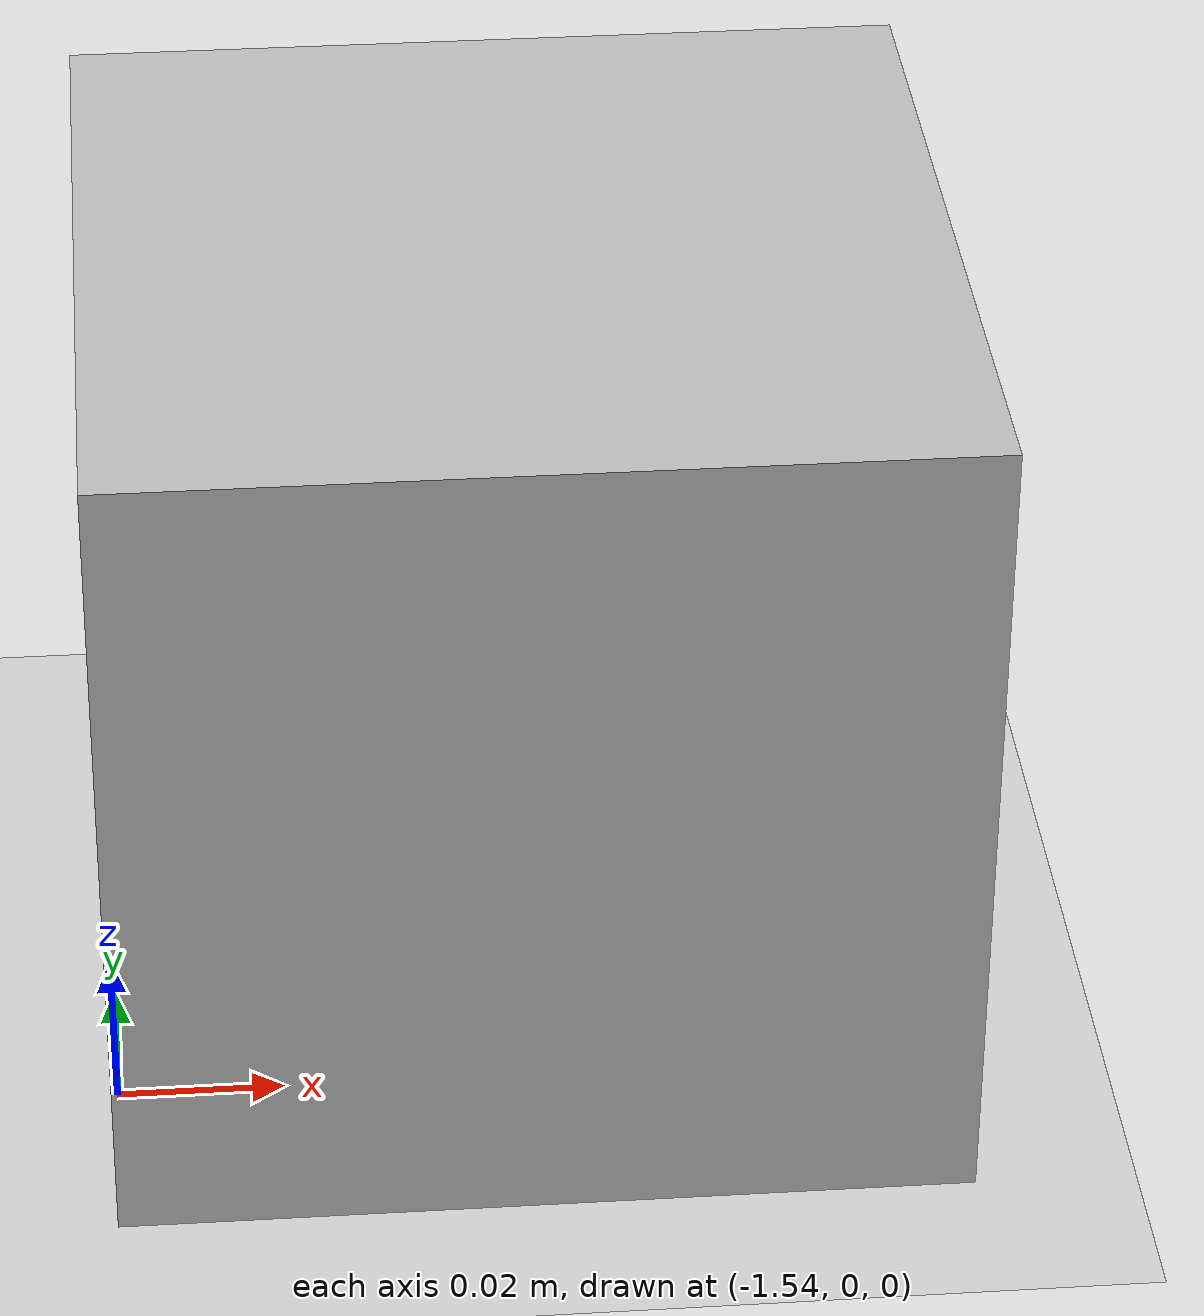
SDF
<?xml version="1.0" ?>
<sdf version='1.6'>
  <world name='default'>
    <light name='sun' type='directional'>
      <cast_shadows>1</cast_shadows>
      <pose frame=''>0 0 10 0 -0 0</pose>
      <diffuse>0.8 0.8 0.8 1</diffuse>
      <specular>0.2 0.2 0.2 1</specular>
      <attenuation>
        <range>1000</range>
        <constant>0.9</constant>
        <linear>0.01</linear>
        <quadratic>0.001</quadratic>
      </attenuation>
      <direction>-0.5 0.1 -0.9</direction>
    </light>
    <model name='ground_plane'>
      <static>1</static>
      <link name='link'>
        <collision name='collision'>
          <geometry>
            <plane>
              <normal>0 0 1</normal>
              <size>100 100</size>
            </plane>
          </geometry>
          <surface>
            <friction>
              <ode>
                <mu>100</mu>
                <mu2>50</mu2>
              </ode>
              <torsional>
                <ode/>
              </torsional>
            </friction>
            <contact>
              <ode/>
            </contact>
            <bounce/>
          </surface>
          <max_contacts>10</max_contacts>
        </collision>
        <visual name='visual'>
          <cast_shadows>0</cast_shadows>
          <geometry>
            <plane>
              <normal>0 0 1</normal>
              <size>100 100</size>
            </plane>
          </geometry>
          <material>
            <script>
              <uri>file://media/materials/scripts/gazebo.material</uri>
              <name>Gazebo/Grey</name>
            </script>
          </material>
        </visual>
        <self_collide>0</self_collide>
        <kinematic>0</kinematic>
      </link>
    </model>
    <model name='camera'>
      <pose frame=''>-1.4903 0.025726 0.05 0 -0 0</pose>
      <link name='link'>
        <inertial>
          <mass>0.1</mass>
          <inertia>
            <ixx>0.000166667</ixx>
            <iyy>0.000166667</iyy>
            <izz>0.000166667</izz>
            <ixy>0</ixy>
            <ixz>0</ixz>
            <iyz>0</iyz>
          </inertia>
        </inertial>
        <collision name='collision'>
          <geometry>
            <box>
              <size>0.1 0.1 0.1</size>
            </box>
          </geometry>
          <max_contacts>10</max_contacts>
          <surface>
            <contact>
              <ode/>
            </contact>
            <bounce/>
            <friction>
              <torsional>
                <ode/>
              </torsional>
              <ode/>
            </friction>
          </surface>
        </collision>
        <visual name='visual'>
          <geometry>
            <box>
              <size>0.1 0.1 0.1</size>
            </box>
          </geometry>
        </visual>
        <sensor name='camera' type='camera'>
          <camera name='__default__'>
            <horizontal_fov>1.047</horizontal_fov>
            <image>
              <width>320</width>
              <height>240</height>
            </image>
            <clip>
              <near>0.1</near>
              <far>100</far>
            </clip>
          </camera>
          <plugin name ="camera_controller" filename="libgazebo_ros_camera.so">
            <always_on>true</always_on>
            <update_rate>30.0</update_rate>
            <cameraName>usb_cam</cameraName>
            <imageTopicName>image_raw</imageTopicName>
            <cameraInfoTopicname>camera_info</cameraInfoTopicname>
            <frameName>camera_link</frameName>
            <hackBaseLine>0.07</hackBaseLine>
            <distortionK1>0.0</distortionK1>
            <distortionK2>0.0</distortionK2>
            <distortionK3>0.0</distortionK3>
            <distortionT1>0.0</distortionT1>
            <distortionT2>0.0</distortionT2>
          </plugin>
          <visualize>1</visualize>
        </sensor>
        <self_collide>0</self_collide>
        <kinematic>0</kinematic>
      </link>
      <static>true</static>
    </model>
  </world>
</sdf>
